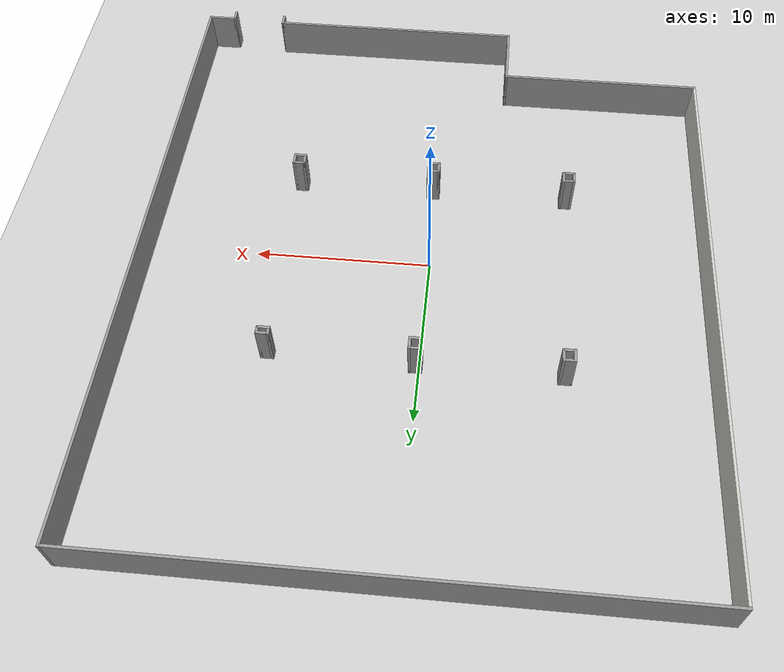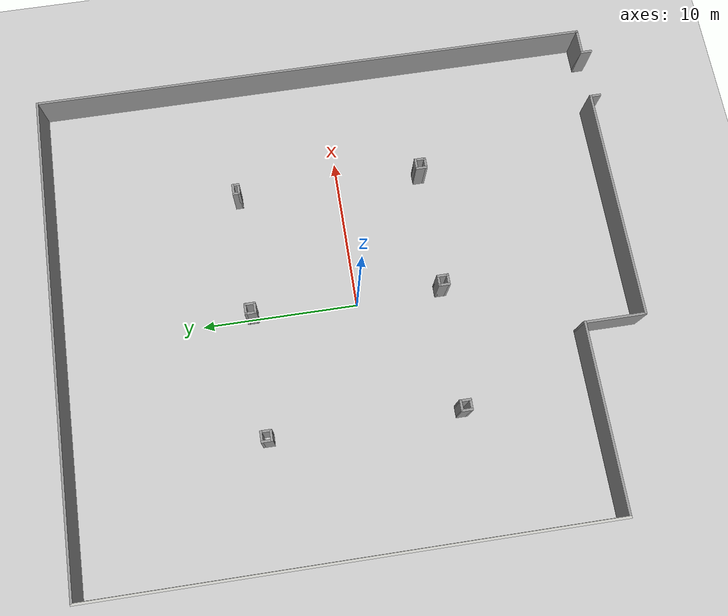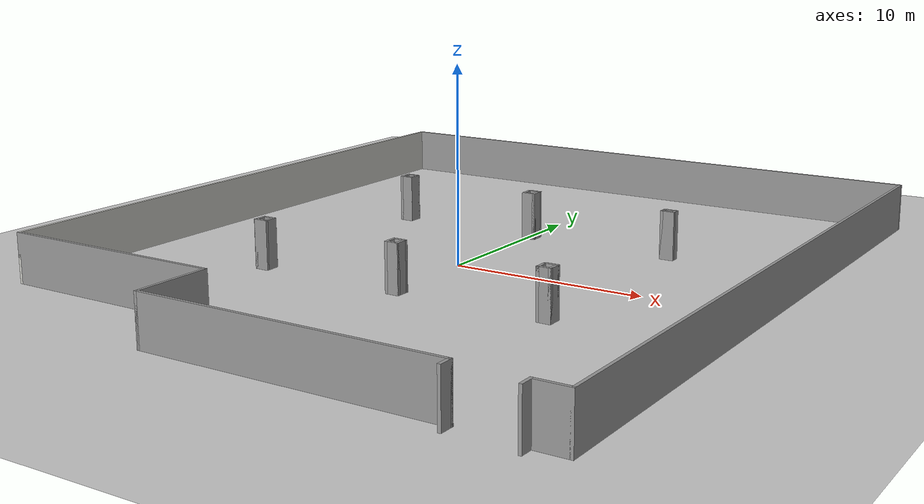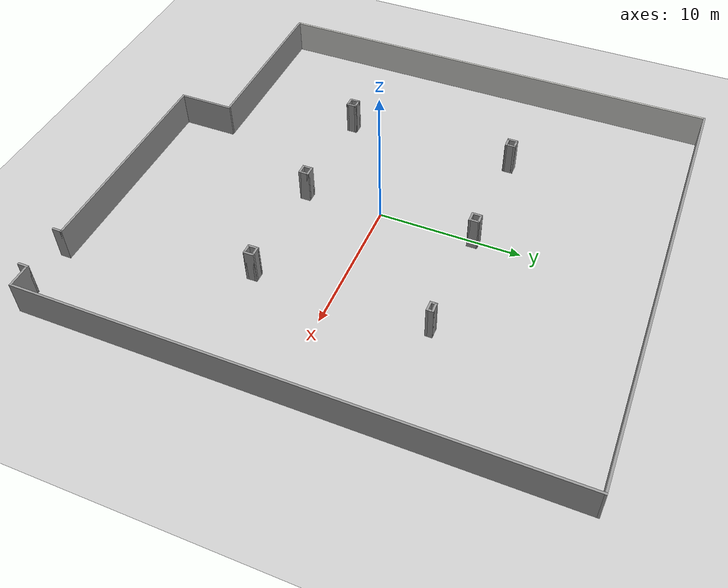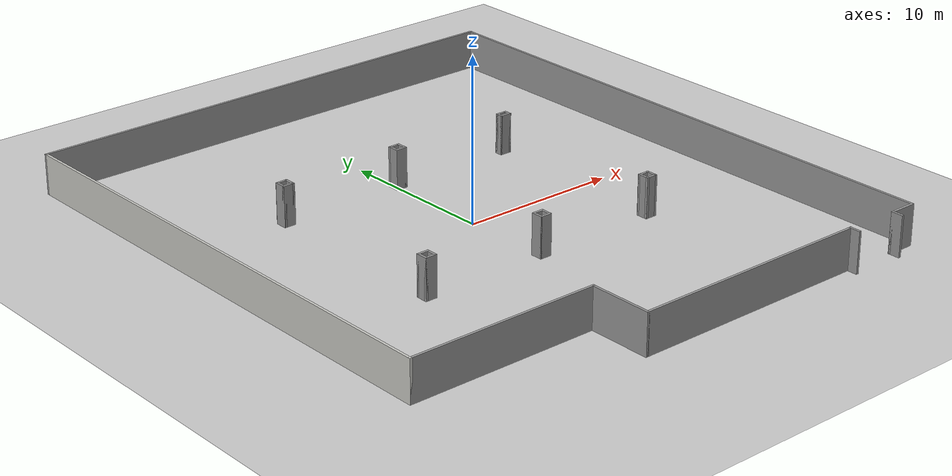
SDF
<sdf version="1.7">
 <world name="default">
  <light name="sun" type="directional">
   <pose>0 0 10 0 -0 0</pose>
   <diffuse>0.8 0.8 0.8 1</diffuse>
   <specular>0.2 0.2 0.2 1</specular>
   <attenuation>
    <range>1000</range>
    <constant>0.9</constant>
    <linear>0.01</linear>
    <quadratic>0.001</quadratic>
   </attenuation>
   <direction>-0.5 0.1 -0.9</direction>
   <spot><inner_angle>0</inner_angle><outer_angle>0</outer_angle><falloff>0</falloff></spot>
  </light>
  <model name="ground_plane">
   <static>1</static>
   <link name="link">
    <collision name="collision">
     <geometry><plane><normal>0 0 1</normal><size>100 100</size></plane></geometry>
     <surface>
      <contact><collide_bitmask>65535</collide_bitmask></contact>
      <friction><ode><mu>100</mu><mu2>50</mu2></ode></friction>
     </surface>
    </collision>
    <visual name="visual">
     <cast_shadows>0</cast_shadows>
     <geometry><plane><normal>0 0 1</normal><size>100 100</size></plane></geometry>
     <material>
      <script><uri>file://media/materials/scripts/gazebo.material</uri><name>Gazebo/Grey</name></script>
     </material>
    </visual>
   </link>
  </model>
  <gravity>0 0 -9.8</gravity>
  <magnetic_field>6e-06 2.3e-05 -4.2e-05</magnetic_field>
  <atmosphere type="adiabatic"/>
  <physics type="ode">
   <max_step_size>0.001</max_step_size>
   <real_time_factor>1</real_time_factor>
   <real_time_update_rate>1000</real_time_update_rate>
  </physics>
  <scene><ambient>0.4 0.4 0.4 1</ambient><background>0.7 0.7 0.7 1</background><shadows>1</shadows></scene>
  <spherical_coordinates>
   <surface_model>EARTH_WGS84</surface_model>
   <latitude_deg>0</latitude_deg>
   <longitude_deg>0</longitude_deg>
   <elevation>0</elevation>
   <heading_deg>0</heading_deg>
  </spherical_coordinates>
  <model name="jayan_nave1">
   <pose>0.2828 0.396021 0 0 -0 0</pose>
   <link name="Wall_10">
    <collision name="Wall_10_Collision">
     <geometry><box><size>36.75 0.15 2.5</size></box></geometry>
     <pose>0 0 1.25 0 -0 0</pose>
    </collision>
    <visual name="Wall_10_Visual">
     <pose>0 0 1.25 0 -0 0</pose>
     <geometry><box><size>36.75 0.15 2.5</size></box></geometry>
     <material>
      <script><uri>file://media/materials/scripts/gazebo.material</uri><name>Gazebo/Grey</name></script>
      <ambient>1 1 1 1</ambient>
     </material>
     <meta><layer>0</layer></meta>
    </visual>
    <pose>15.925 0.299999 0 0 -0 1.5708</pose>
   </link>
   <link name="Wall_11">
    <collision name="Wall_11_Collision">
     <geometry><box><size>32 0.15 2.5</size></box></geometry>
     <pose>0 0 1.25 0 -0 0</pose>
    </collision>
    <visual name="Wall_11_Visual">
     <pose>0 0 1.25 0 -0 0</pose>
     <geometry><box><size>32 0.15 2.5</size></box></geometry>
     <material>
      <script><uri>file://media/materials/scripts/gazebo.material</uri><name>Gazebo/Grey</name></script>
      <ambient>1 1 1 1</ambient>
     </material>
     <meta><layer>0</layer></meta>
    </visual>
    <pose>-0 18.6 0 0 -0 3.14159</pose>
   </link>
   <link name="Wall_12">
    <collision name="Wall_12_Collision">
     <geometry><box><size>32.75 0.15 2.5</size></box></geometry>
     <pose>0 0 1.25 0 -0 0</pose>
    </collision>
    <visual name="Wall_12_Visual">
     <pose>0 0 1.25 0 -0 0</pose>
     <geometry><box><size>32.75 0.15 2.5</size></box></geometry>
     <material>
      <script><uri>file://media/materials/scripts/gazebo.material</uri><name>Gazebo/CeilingTiled</name></script>
      <ambient>1 1 1 1</ambient>
     </material>
     <meta><layer>0</layer></meta>
    </visual>
    <pose>-15.925 2.3 0 0 -0 -1.5708</pose>
   </link>
   <link name="Wall_13">
    <collision name="Wall_13_Collision">
     <geometry><box><size>12 0.15 2.5</size></box></geometry>
     <pose>0 0 1.25 0 -0 0</pose>
    </collision>
    <visual name="Wall_13_Visual">
     <pose>0 0 1.25 0 -0 0</pose>
     <geometry><box><size>12 0.15 2.5</size></box></geometry>
     <material>
      <script><uri>file://media/materials/scripts/gazebo.material</uri><name>Gazebo/Grey</name></script>
      <ambient>1 1 1 1</ambient>
     </material>
     <meta><layer>0</layer></meta>
    </visual>
    <pose>-10 -14 0 0 -0 0</pose>
   </link>
   <link name="Wall_14">
    <collision name="Wall_14_Collision">
     <geometry><box><size>4 0.15 2.5</size></box></geometry>
     <pose>0 0 1.25 0 -0 0</pose>
    </collision>
    <visual name="Wall_14_Visual">
     <pose>0 0 1.25 0 -0 0</pose>
     <geometry><box><size>4 0.15 2.5</size></box></geometry>
     <material>
      <script><uri>file://media/materials/scripts/gazebo.material</uri><name>Gazebo/Grey</name></script>
      <ambient>1 1 1 1</ambient>
     </material>
     <meta><layer>0</layer></meta>
    </visual>
    <pose>-4.075 -15.925 0 0 -0 -1.5708</pose>
   </link>
   <link name="Wall_15">
    <collision name="Wall_15_Collision">
     <geometry><box><size>15.25 0.15 2.5</size></box></geometry>
     <pose>0 0 1.25 0 -0 0</pose>
    </collision>
    <visual name="Wall_15_Visual">
     <pose>0 0 1.25 0 -0 0</pose>
     <geometry><box><size>15.25 0.15 2.5</size></box></geometry>
     <material>
      <script><uri>file://media/materials/scripts/gazebo.material</uri><name>Gazebo/Grey</name></script>
      <ambient>1 1 1 1</ambient>
     </material>
     <meta><layer>0</layer></meta>
    </visual>
    <pose>3.475 -17.85 0 0 -0 0</pose>
   </link>
   <link name="Wall_16">
    <collision name="Wall_16_Collision">
     <geometry><box><size>0.75 0.15 2.5</size></box></geometry>
     <pose>0 0 1.25 0 -0 0</pose>
    </collision>
    <visual name="Wall_16_Visual">
     <pose>0 0 1.25 0 -0 0</pose>
     <geometry><box><size>0.75 0.15 2.5</size></box></geometry>
     <material>
      <script><uri>file://media/materials/scripts/gazebo.material</uri><name>Gazebo/Grey</name></script>
      <ambient>1 1 1 1</ambient>
     </material>
     <meta><layer>0</layer></meta>
    </visual>
    <pose>11.025 -18.15 0 0 -0 -1.5708</pose>
   </link>
   <link name="Wall_18">
    <collision name="Wall_18_Collision">
     <geometry><box><size>0.75 0.15 2.5</size></box></geometry>
     <pose>0 0 1.25 0 -0 0</pose>
    </collision>
    <visual name="Wall_18_Visual">
     <pose>0 0 1.25 0 -0 0</pose>
     <geometry><box><size>0.75 0.15 2.5</size></box></geometry>
     <material>
      <script><uri>file://media/materials/scripts/gazebo.material</uri><name>Gazebo/Grey</name></script>
      <ambient>1 1 1 1</ambient>
     </material>
     <meta><layer>0</layer></meta>
    </visual>
    <pose>-8.34316 -5.76342 0 0 -0 1.5708</pose>
   </link>
   <link name="Wall_19">
    <collision name="Wall_19_Collision">
     <geometry><box><size>0.75 0.15 2.5</size></box></geometry>
     <pose>0 0 1.25 0 -0 0</pose>
    </collision>
    <visual name="Wall_19_Visual">
     <pose>0 0 1.25 0 -0 0</pose>
     <geometry><box><size>0.75 0.15 2.5</size></box></geometry>
     <material>
      <script><uri>file://media/materials/scripts/gazebo.material</uri><name>Gazebo/Grey</name></script>
      <ambient>1 1 1 1</ambient>
     </material>
     <meta><layer>0</layer></meta>
    </visual>
    <pose>-8.04316 -5.46342 0 0 -0 0</pose>
   </link>
   <link name="Wall_20">
    <collision name="Wall_20_Collision">
     <geometry><box><size>0.75 0.15 2.5</size></box></geometry>
     <pose>0 0 1.25 0 -0 0</pose>
    </collision>
    <visual name="Wall_20_Visual">
     <pose>0 0 1.25 0 -0 0</pose>
     <geometry><box><size>0.75 0.15 2.5</size></box></geometry>
     <material>
      <script><uri>file://media/materials/scripts/gazebo.material</uri><name>Gazebo/Grey</name></script>
      <ambient>1 1 1 1</ambient>
     </material>
     <meta><layer>0</layer></meta>
    </visual>
    <pose>-7.74316 -5.76342 0 0 -0 -1.5708</pose>
   </link>
   <link name="Wall_21">
    <collision name="Wall_21_Collision">
     <geometry><box><size>0.75 0.15 2.5</size></box></geometry>
     <pose>0 0 1.25 0 -0 0</pose>
    </collision>
    <visual name="Wall_21_Visual">
     <pose>0 0 1.25 0 -0 0</pose>
     <geometry><box><size>0.75 0.15 2.5</size></box></geometry>
     <material>
      <script><uri>file://media/materials/scripts/gazebo.material</uri><name>Gazebo/Grey</name></script>
      <ambient>1 1 1 1</ambient>
     </material>
     <meta><layer>0</layer></meta>
    </visual>
    <pose>-8.04316 -6.06342 0 0 -0 3.14159</pose>
   </link>
   <link name="Wall_24">
    <collision name="Wall_24_Collision">
     <geometry><box><size>0.75 0.15 2.5</size></box></geometry>
     <pose>0 0 1.25 0 -0 0</pose>
    </collision>
    <visual name="Wall_24_Visual">
     <pose>0 0 1.25 0 -0 0</pose>
     <geometry><box><size>0.75 0.15 2.5</size></box></geometry>
     <material>
      <script><uri>file://media/materials/scripts/gazebo.material</uri><name>Gazebo/Grey</name></script>
      <ambient>1 1 1 1</ambient>
     </material>
     <meta><layer>0</layer></meta>
    </visual>
    <pose>-0.389697 -5.84322 0 0 -0 1.5708</pose>
   </link>
   <link name="Wall_25">
    <collision name="Wall_25_Collision">
     <geometry><box><size>0.75 0.15 2.5</size></box></geometry>
     <pose>0 0 1.25 0 -0 0</pose>
    </collision>
    <visual name="Wall_25_Visual">
     <pose>0 0 1.25 0 -0 0</pose>
     <geometry><box><size>0.75 0.15 2.5</size></box></geometry>
     <material>
      <script><uri>file://media/materials/scripts/gazebo.material</uri><name>Gazebo/Grey</name></script>
      <ambient>1 1 1 1</ambient>
     </material>
     <meta><layer>0</layer></meta>
    </visual>
    <pose>-0.089697 -5.54322 0 0 -0 0</pose>
   </link>
   <link name="Wall_26">
    <collision name="Wall_26_Collision">
     <geometry><box><size>0.75 0.15 2.5</size></box></geometry>
     <pose>0 0 1.25 0 -0 0</pose>
    </collision>
    <visual name="Wall_26_Visual">
     <pose>0 0 1.25 0 -0 0</pose>
     <geometry><box><size>0.75 0.15 2.5</size></box></geometry>
     <material>
      <script><uri>file://media/materials/scripts/gazebo.material</uri><name>Gazebo/Grey</name></script>
      <ambient>1 1 1 1</ambient>
     </material>
     <meta><layer>0</layer></meta>
    </visual>
    <pose>0.210303 -5.84322 0 0 -0 -1.5708</pose>
   </link>
   <link name="Wall_27">
    <collision name="Wall_27_Collision">
     <geometry><box><size>0.75 0.15 2.5</size></box></geometry>
     <pose>0 0 1.25 0 -0 0</pose>
    </collision>
    <visual name="Wall_27_Visual">
     <pose>0 0 1.25 0 -0 0</pose>
     <geometry><box><size>0.75 0.15 2.5</size></box></geometry>
     <material>
      <script><uri>file://media/materials/scripts/gazebo.material</uri><name>Gazebo/Grey</name></script>
      <ambient>1 1 1 1</ambient>
     </material>
     <meta><layer>0</layer></meta>
    </visual>
    <pose>-0.089697 -6.14322 0 0 -0 3.14159</pose>
   </link>
   <link name="Wall_29">
    <collision name="Wall_29_Collision">
     <geometry><box><size>0.75 0.15 2.5</size></box></geometry>
     <pose>0 0 1.25 0 -0 0</pose>
    </collision>
    <visual name="Wall_29_Visual">
     <pose>0 0 1.25 0 -0 0</pose>
     <geometry><box><size>0.75 0.15 2.5</size></box></geometry>
     <material>
      <script><uri>file://media/materials/scripts/gazebo.material</uri><name>Gazebo/Grey</name></script>
      <ambient>1 1 1 1</ambient>
     </material>
     <meta><layer>0</layer></meta>
    </visual>
    <pose>7.61696 -5.81662 0 0 -0 1.5708</pose>
   </link>
   <link name="Wall_30">
    <collision name="Wall_30_Collision">
     <geometry><box><size>0.75 0.15 2.5</size></box></geometry>
     <pose>0 0 1.25 0 -0 0</pose>
    </collision>
    <visual name="Wall_30_Visual">
     <pose>0 0 1.25 0 -0 0</pose>
     <geometry><box><size>0.75 0.15 2.5</size></box></geometry>
     <material>
      <script><uri>file://media/materials/scripts/gazebo.material</uri><name>Gazebo/Grey</name></script>
      <ambient>1 1 1 1</ambient>
     </material>
     <meta><layer>0</layer></meta>
    </visual>
    <pose>7.91696 -5.51662 0 0 -0 0</pose>
   </link>
   <link name="Wall_31">
    <collision name="Wall_31_Collision">
     <geometry><box><size>0.75 0.15 2.5</size></box></geometry>
     <pose>0 0 1.25 0 -0 0</pose>
    </collision>
    <visual name="Wall_31_Visual">
     <pose>0 0 1.25 0 -0 0</pose>
     <geometry><box><size>0.75 0.15 2.5</size></box></geometry>
     <material>
      <script><uri>file://media/materials/scripts/gazebo.material</uri><name>Gazebo/Grey</name></script>
      <ambient>1 1 1 1</ambient>
     </material>
     <meta><layer>0</layer></meta>
    </visual>
    <pose>8.21696 -5.81662 0 0 -0 -1.5708</pose>
   </link>
   <link name="Wall_32">
    <collision name="Wall_32_Collision">
     <geometry><box><size>0.75 0.15 2.5</size></box></geometry>
     <pose>0 0 1.25 0 -0 0</pose>
    </collision>
    <visual name="Wall_32_Visual">
     <pose>0 0 1.25 0 -0 0</pose>
     <geometry><box><size>0.75 0.15 2.5</size></box></geometry>
     <material>
      <script><uri>file://media/materials/scripts/gazebo.material</uri><name>Gazebo/Grey</name></script>
      <ambient>1 1 1 1</ambient>
     </material>
     <meta><layer>0</layer></meta>
    </visual>
    <pose>7.91696 -6.11662 0 0 -0 3.14159</pose>
   </link>
   <link name="Wall_34">
    <collision name="Wall_34_Collision">
     <geometry><box><size>0.75 0.15 2.5</size></box></geometry>
     <pose>0 0 1.25 0 -0 0</pose>
    </collision>
    <visual name="Wall_34_Visual">
     <pose>0 0 1.25 0 -0 0</pose>
     <geometry><box><size>0.75 0.15 2.5</size></box></geometry>
     <material>
      <script><uri>file://media/materials/scripts/gazebo.material</uri><name>Gazebo/Grey</name></script>
      <ambient>1 1 1 1</ambient>
     </material>
     <meta><layer>0</layer></meta>
    </visual>
    <pose>-8.39636 6.40468 0 0 -0 -1.5708</pose>
   </link>
   <link name="Wall_35">
    <collision name="Wall_35_Collision">
     <geometry><box><size>0.75 0.15 2.5</size></box></geometry>
     <pose>0 0 1.25 0 -0 0</pose>
    </collision>
    <visual name="Wall_35_Visual">
     <pose>0 0 1.25 0 -0 0</pose>
     <geometry><box><size>0.75 0.15 2.5</size></box></geometry>
     <material>
      <script><uri>file://media/materials/scripts/gazebo.material</uri><name>Gazebo/Grey</name></script>
      <ambient>1 1 1 1</ambient>
     </material>
     <meta><layer>0</layer></meta>
    </visual>
    <pose>-8.09636 6.10468 0 0 -0 0</pose>
   </link>
   <link name="Wall_36">
    <collision name="Wall_36_Collision">
     <geometry><box><size>0.75 0.15 2.5</size></box></geometry>
     <pose>0 0 1.25 0 -0 0</pose>
    </collision>
    <visual name="Wall_36_Visual">
     <pose>0 0 1.25 0 -0 0</pose>
     <geometry><box><size>0.75 0.15 2.5</size></box></geometry>
     <material>
      <script><uri>file://media/materials/scripts/gazebo.material</uri><name>Gazebo/Grey</name></script>
      <ambient>1 1 1 1</ambient>
     </material>
     <meta><layer>0</layer></meta>
    </visual>
    <pose>-7.79636 6.40468 0 0 -0 1.5708</pose>
   </link>
   <link name="Wall_37">
    <collision name="Wall_37_Collision">
     <geometry><box><size>0.75 0.15 2.5</size></box></geometry>
     <pose>0 0 1.25 0 -0 0</pose>
    </collision>
    <visual name="Wall_37_Visual">
     <pose>0 0 1.25 0 -0 0</pose>
     <geometry><box><size>0.75 0.15 2.5</size></box></geometry>
     <material>
      <script><uri>file://media/materials/scripts/gazebo.material</uri><name>Gazebo/Grey</name></script>
      <ambient>1 1 1 1</ambient>
     </material>
     <meta><layer>0</layer></meta>
    </visual>
    <pose>-8.09636 6.70468 0 0 -0 3.14159</pose>
   </link>
   <link name="Wall_39">
    <collision name="Wall_39_Collision">
     <geometry><box><size>0.75 0.15 2.5</size></box></geometry>
     <pose>0 0 1.25 0 -0 0</pose>
    </collision>
    <visual name="Wall_39_Visual">
     <pose>0 0 1.25 0 -0 0</pose>
     <geometry><box><size>0.75 0.15 2.5</size></box></geometry>
     <material>
      <script><uri>file://media/materials/scripts/gazebo.material</uri><name>Gazebo/Grey</name></script>
      <ambient>1 1 1 1</ambient>
     </material>
     <meta><layer>0</layer></meta>
    </visual>
    <pose>-0.416297 6.37808 0 0 -0 -1.5708</pose>
   </link>
   <link name="Wall_40">
    <collision name="Wall_40_Collision">
     <geometry><box><size>0.75 0.15 2.5</size></box></geometry>
     <pose>0 0 1.25 0 -0 0</pose>
    </collision>
    <visual name="Wall_40_Visual">
     <pose>0 0 1.25 0 -0 0</pose>
     <geometry><box><size>0.75 0.15 2.5</size></box></geometry>
     <material>
      <script><uri>file://media/materials/scripts/gazebo.material</uri><name>Gazebo/Grey</name></script>
      <ambient>1 1 1 1</ambient>
     </material>
     <meta><layer>0</layer></meta>
    </visual>
    <pose>-0.116297 6.07808 0 0 -0 0</pose>
   </link>
   <link name="Wall_41">
    <collision name="Wall_41_Collision">
     <geometry><box><size>0.75 0.15 2.5</size></box></geometry>
     <pose>0 0 1.25 0 -0 0</pose>
    </collision>
    <visual name="Wall_41_Visual">
     <pose>0 0 1.25 0 -0 0</pose>
     <geometry><box><size>0.75 0.15 2.5</size></box></geometry>
     <material>
      <script><uri>file://media/materials/scripts/gazebo.material</uri><name>Gazebo/Grey</name></script>
      <ambient>1 1 1 1</ambient>
     </material>
     <meta><layer>0</layer></meta>
    </visual>
    <pose>0.183703 6.37808 0 0 -0 1.5708</pose>
   </link>
   <link name="Wall_42">
    <collision name="Wall_42_Collision">
     <geometry><box><size>0.75 0.15 2.5</size></box></geometry>
     <pose>0 0 1.25 0 -0 0</pose>
    </collision>
    <visual name="Wall_42_Visual">
     <pose>0 0 1.25 0 -0 0</pose>
     <geometry><box><size>0.75 0.15 2.5</size></box></geometry>
     <material>
      <script><uri>file://media/materials/scripts/gazebo.material</uri><name>Gazebo/Grey</name></script>
      <ambient>1 1 1 1</ambient>
     </material>
     <meta><layer>0</layer></meta>
    </visual>
    <pose>-0.116297 6.67808 0 0 -0 3.14159</pose>
   </link>
   <link name="Wall_44">
    <collision name="Wall_44_Collision">
     <geometry><box><size>0.5 0.15 2.5</size></box></geometry>
     <pose>0 0 1.25 0 -0 0</pose>
    </collision>
    <visual name="Wall_44_Visual">
     <pose>0 0 1.25 0 -0 0</pose>
     <geometry><box><size>0.5 0.15 2.5</size></box></geometry>
     <material>
      <script><uri>file://media/materials/scripts/gazebo.material</uri><name>Gazebo/Grey</name></script>
      <ambient>1 1 1 1</ambient>
     </material>
     <meta><layer>0</layer></meta>
    </visual>
    <pose>7.61696 6.29448 0 0 -0 1.5708</pose>
   </link>
   <link name="Wall_45">
    <collision name="Wall_45_Collision">
     <geometry><box><size>0.75 0.15 2.5</size></box></geometry>
     <pose>0 0 1.25 0 -0 0</pose>
    </collision>
    <visual name="Wall_45_Visual">
     <pose>0 0 1.25 0 -0 0</pose>
     <geometry><box><size>0.75 0.15 2.5</size></box></geometry>
     <material>
      <script><uri>file://media/materials/scripts/gazebo.material</uri><name>Gazebo/Grey</name></script>
      <ambient>1 1 1 1</ambient>
     </material>
     <meta><layer>0</layer></meta>
    </visual>
    <pose>7.91696 6.46948 0 0 -0 0</pose>
   </link>
   <link name="Wall_46">
    <collision name="Wall_46_Collision">
     <geometry><box><size>0.5 0.15 2.5</size></box></geometry>
     <pose>0 0 1.25 0 -0 0</pose>
    </collision>
    <visual name="Wall_46_Visual">
     <pose>0 0 1.25 0 -0 0</pose>
     <geometry><box><size>0.5 0.15 2.5</size></box></geometry>
     <material>
      <script><uri>file://media/materials/scripts/gazebo.material</uri><name>Gazebo/Grey</name></script>
      <ambient>1 1 1 1</ambient>
     </material>
     <meta><layer>0</layer></meta>
    </visual>
    <pose>8.21696 6.29448 0 0 -0 -1.5708</pose>
   </link>
   <link name="Wall_47">
    <collision name="Wall_47_Collision">
     <geometry><box><size>0.75 0.15 2.5</size></box></geometry>
     <pose>0 0 1.25 0 -0 0</pose>
    </collision>
    <visual name="Wall_47_Visual">
     <pose>0 0 1.25 0 -0 0</pose>
     <geometry><box><size>0.75 0.15 2.5</size></box></geometry>
     <material>
      <script><uri>file://media/materials/scripts/gazebo.material</uri><name>Gazebo/Grey</name></script>
      <ambient>1 1 1 1</ambient>
     </material>
     <meta><layer>0</layer></meta>
    </visual>
    <pose>7.91696 6.11948 0 0 -0 3.14159</pose>
   </link>
   <link name="Wall_8">
    <collision name="Wall_8_Collision">
     <geometry><box><size>0.75 0.15 2.5</size></box></geometry>
     <pose>0 0 1.25 0 -0 0</pose>
    </collision>
    <visual name="Wall_8_Visual">
     <pose>0 0 1.25 0 -0 0</pose>
     <geometry><box><size>0.75 0.15 2.5</size></box></geometry>
     <material>
      <script><uri>file://media/materials/scripts/gazebo.material</uri><name>Gazebo/Grey</name></script>
      <ambient>1 1 1 1</ambient>
     </material>
     <meta><layer>0</layer></meta>
    </visual>
    <pose>14.325 -18.3 0 0 -0 1.5708</pose>
   </link>
   <link name="Wall_9">
    <collision name="Wall_9_Collision">
     <geometry><box><size>1.75 0.15 2.5</size></box></geometry>
     <pose>0 0 1.25 0 -0 0</pose>
    </collision>
    <visual name="Wall_9_Visual">
     <pose>0 0 1.25 0 -0 0</pose>
     <geometry><box><size>1.75 0.15 2.5</size></box></geometry>
     <material>
      <script><uri>file://media/materials/scripts/gazebo.material</uri><name>Gazebo/Grey</name></script>
      <ambient>1 1 1 1</ambient>
     </material>
     <meta><layer>0</layer></meta>
    </visual>
    <pose>15.125 -18 0 0 -0 0</pose>
   </link>
   <static>1</static>
  </model>
  <audio><device>default</device></audio>
 </world>
</sdf>
